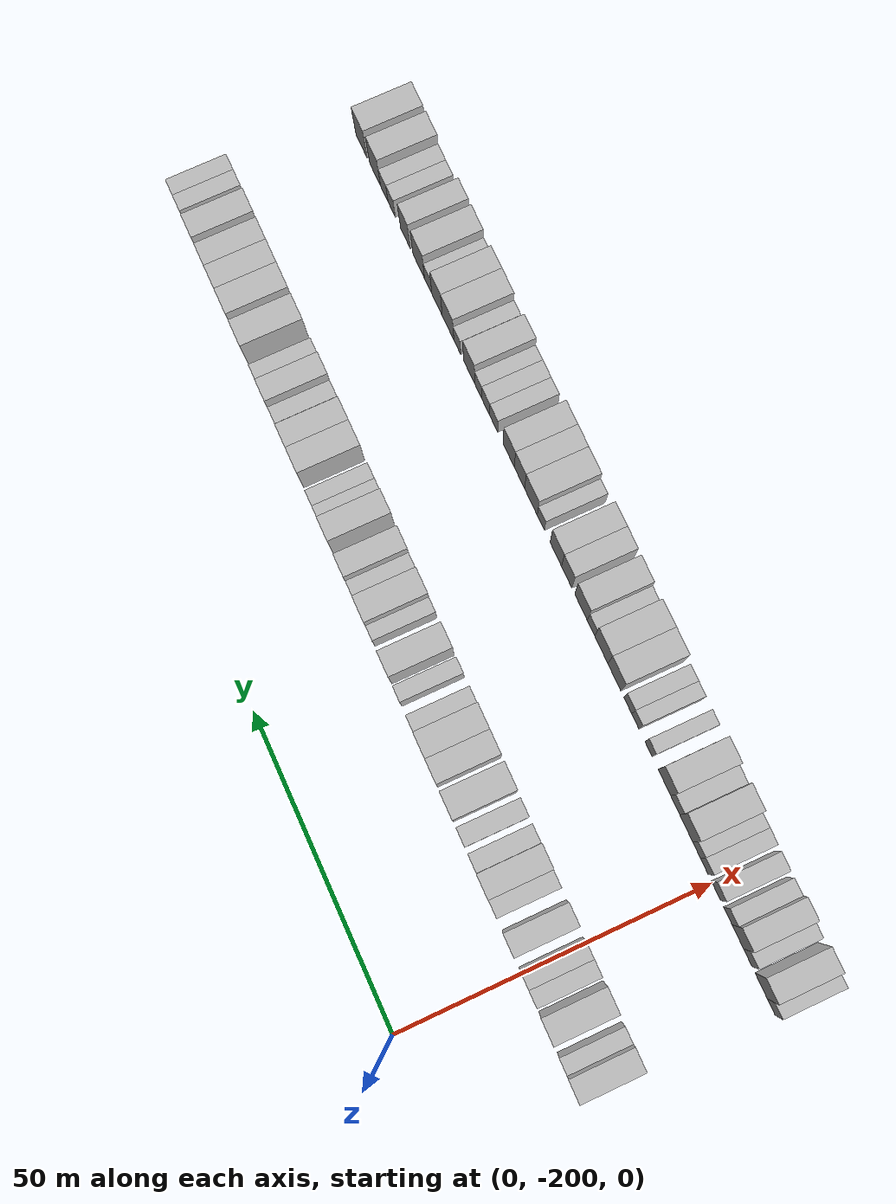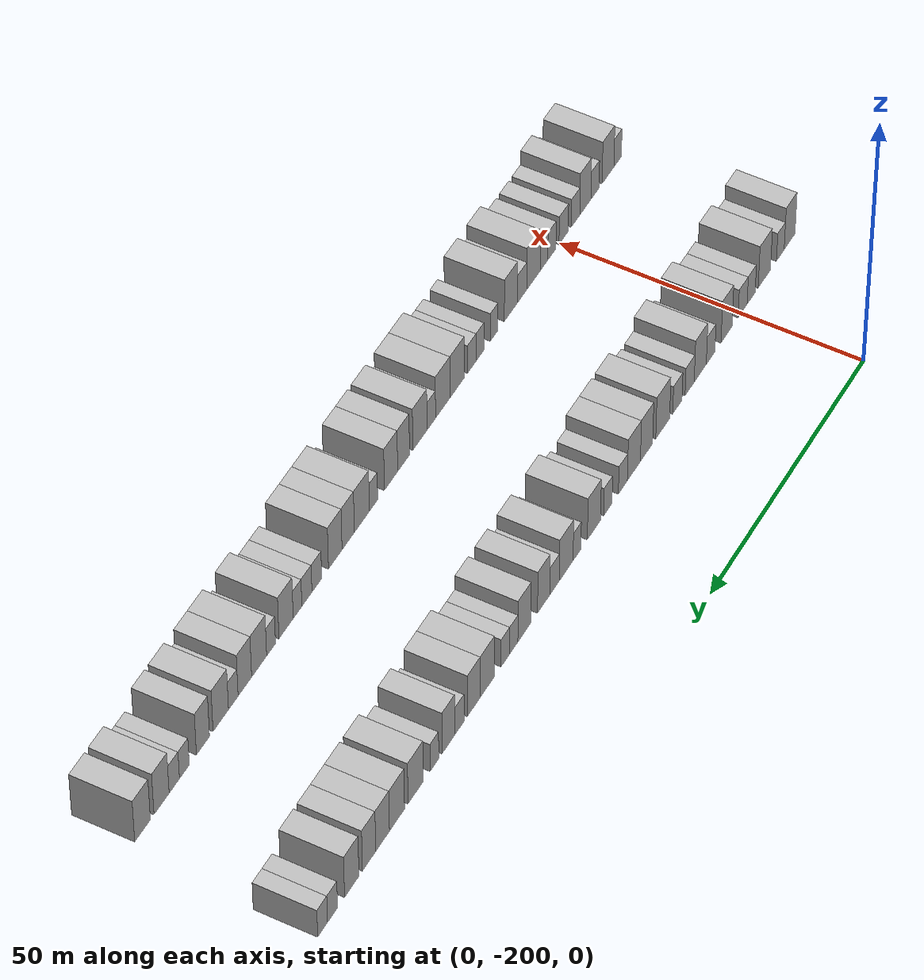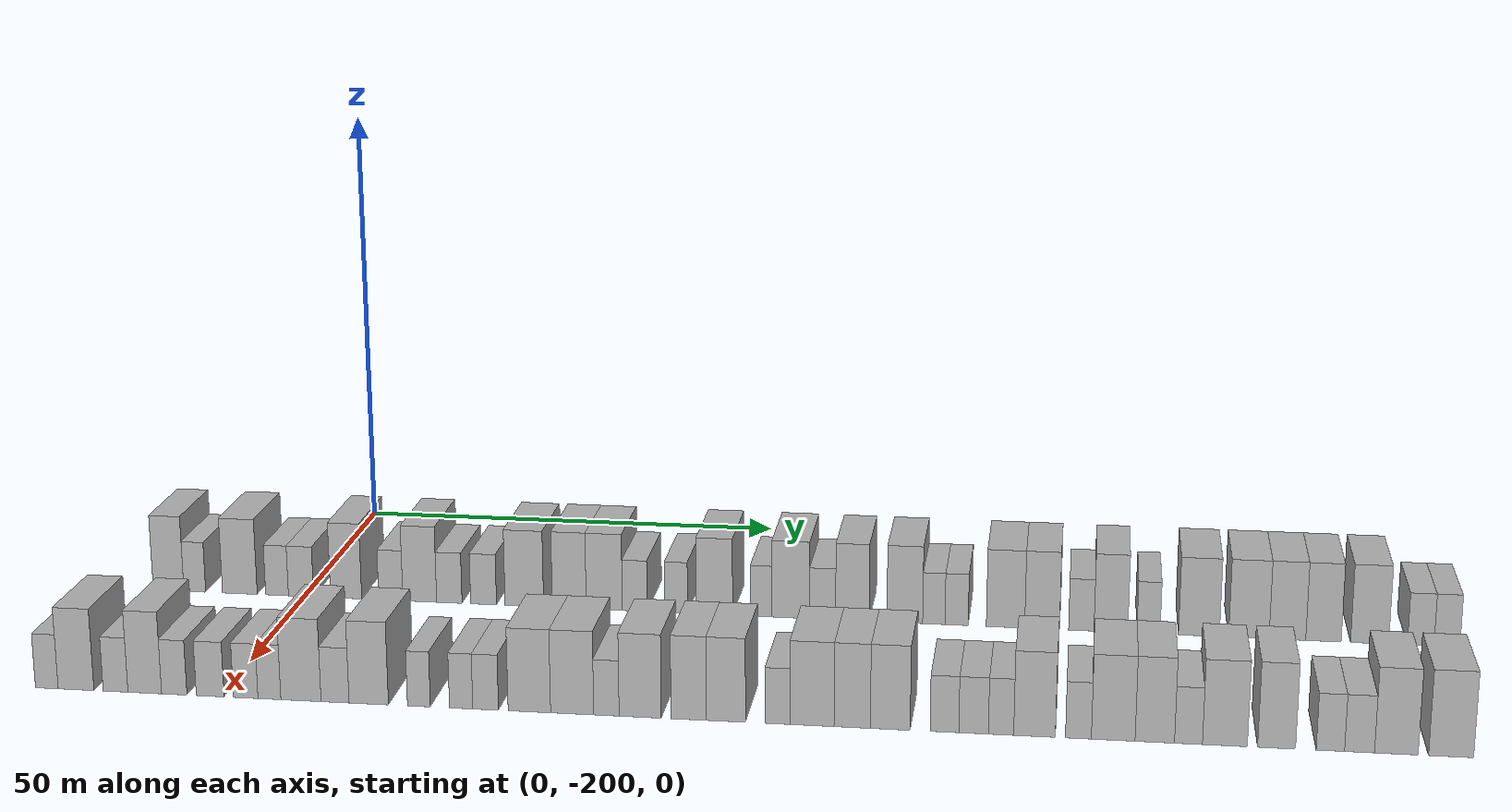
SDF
<sdf version="1.6">
 <world name="default">
  <model name="building_1">
   <static>1</static>
   <pose>25.0000 -216.1763 0 0.000000 0.000000 0.000000</pose>
   <link name="link">
    <pose>0 0 4.50 0 0 0</pose>
    <collision name="collision"><geometry><box><size>10.0000 3.6474 9.0000</size></box></geometry></collision>
    <visual name="visual">
     <cast_shadows>0</cast_shadows>
     <geometry><box><size>10.0000 3.6474 9.0000</size></box></geometry>
     <material>
      <script>
       <uri>model://HANNAS_wall/materials/scripts</uri>
       <uri>model://HANNAS_wall/materials/textures</uri>
       <name>vrc/HANNAS_wall</name>
      </script>
     </material>
    </visual>
   </link>
  </model>
  <model name="building_2">
   <static>1</static>
   <pose>25.0000 -213.0599 0 0.000000 0.000000 0.000000</pose>
   <link name="link">
    <pose>0 0 3.00 0 0 0</pose>
    <collision name="collision"><geometry><box><size>10.0000 2.5855 6.0000</size></box></geometry></collision>
    <visual name="visual">
     <cast_shadows>0</cast_shadows>
     <geometry><box><size>10.0000 2.5855 6.0000</size></box></geometry>
     <material>
      <script>
       <uri>model://HANNAS_wall/materials/scripts</uri>
       <uri>model://HANNAS_wall/materials/textures</uri>
       <name>vrc/HANNAS_wall</name>
      </script>
     </material>
    </visual>
   </link>
  </model>
  <model name="building_3">
   <static>1</static>
   <pose>25.0000 -207.7158 0 0.000000 0.000000 0.000000</pose>
   <link name="link">
    <pose>0 0 4.50 0 0 0</pose>
    <collision name="collision"><geometry><box><size>10.0000 4.1027 9.0000</size></box></geometry></collision>
    <visual name="visual">
     <cast_shadows>0</cast_shadows>
     <geometry><box><size>10.0000 4.1027 9.0000</size></box></geometry>
     <material>
      <script>
       <uri>model://HANNAS_wall/materials/scripts</uri>
       <uri>model://HANNAS_wall/materials/textures</uri>
       <name>vrc/HANNAS_wall</name>
      </script>
     </material>
    </visual>
   </link>
  </model>
  <model name="building_4">
   <static>1</static>
   <pose>25.0000 -203.3240 0 0.000000 0.000000 0.000000</pose>
   <link name="link">
    <pose>0 0 3.00 0 0 0</pose>
    <collision name="collision"><geometry><box><size>10.0000 2.6808 6.0000</size></box></geometry></collision>
    <visual name="visual">
     <cast_shadows>0</cast_shadows>
     <geometry><box><size>10.0000 2.6808 6.0000</size></box></geometry>
     <material>
      <script>
       <uri>model://HANNAS_wall/materials/scripts</uri>
       <uri>model://HANNAS_wall/materials/textures</uri>
       <name>vrc/HANNAS_wall</name>
      </script>
     </material>
    </visual>
   </link>
  </model>
  <model name="building_5">
   <static>1</static>
   <pose>25.0000 -200.5025 0 0.000000 0.000000 0.000000</pose>
   <link name="link">
    <pose>0 0 3.00 0 0 0</pose>
    <collision name="collision"><geometry><box><size>10.0000 2.9622 6.0000</size></box></geometry></collision>
    <visual name="visual">
     <cast_shadows>0</cast_shadows>
     <geometry><box><size>10.0000 2.9622 6.0000</size></box></geometry>
     <material>
      <script>
       <uri>model://HANNAS_wall/materials/scripts</uri>
       <uri>model://HANNAS_wall/materials/textures</uri>
       <name>vrc/HANNAS_wall</name>
      </script>
     </material>
    </visual>
   </link>
  </model>
  <model name="building_6">
   <static>1</static>
   <pose>25.0000 -195.2018 0 0.000000 0.000000 0.000000</pose>
   <link name="link">
    <pose>0 0 4.50 0 0 0</pose>
    <collision name="collision"><geometry><box><size>10.0000 3.6391 9.0000</size></box></geometry></collision>
    <visual name="visual">
     <cast_shadows>0</cast_shadows>
     <geometry><box><size>10.0000 3.6391 9.0000</size></box></geometry>
     <material>
      <script>
       <uri>model://HANNAS_wall/materials/scripts</uri>
       <uri>model://HANNAS_wall/materials/textures</uri>
       <name>vrc/HANNAS_wall</name>
      </script>
     </material>
    </visual>
   </link>
  </model>
  <model name="building_7">
   <static>1</static>
   <pose>25.0000 -189.9766 0 0.000000 0.000000 0.000000</pose>
   <link name="link">
    <pose>0 0 3.00 0 0 0</pose>
    <collision name="collision"><geometry><box><size>10.0000 2.8114 6.0000</size></box></geometry></collision>
    <visual name="visual">
     <cast_shadows>0</cast_shadows>
     <geometry><box><size>10.0000 2.8114 6.0000</size></box></geometry>
     <material>
      <script>
       <uri>model://HANNAS_wall/materials/scripts</uri>
       <uri>model://HANNAS_wall/materials/textures</uri>
       <name>vrc/HANNAS_wall</name>
      </script>
     </material>
    </visual>
   </link>
  </model>
  <model name="building_8">
   <static>1</static>
   <pose>25.0000 -186.6073 0 0.000000 0.000000 0.000000</pose>
   <link name="link">
    <pose>0 0 4.50 0 0 0</pose>
    <collision name="collision"><geometry><box><size>10.0000 3.9271 9.0000</size></box></geometry></collision>
    <visual name="visual">
     <cast_shadows>0</cast_shadows>
     <geometry><box><size>10.0000 3.9271 9.0000</size></box></geometry>
     <material>
      <script>
       <uri>model://HANNAS_wall/materials/scripts</uri>
       <uri>model://HANNAS_wall/materials/textures</uri>
       <name>vrc/HANNAS_wall</name>
      </script>
     </material>
    </visual>
   </link>
  </model>
  <model name="building_9">
   <static>1</static>
   <pose>25.0000 -183.1718 0 0.000000 0.000000 0.000000</pose>
   <link name="link">
    <pose>0 0 3.00 0 0 0</pose>
    <collision name="collision"><geometry><box><size>10.0000 2.9438 6.0000</size></box></geometry></collision>
    <visual name="visual">
     <cast_shadows>0</cast_shadows>
     <geometry><box><size>10.0000 2.9438 6.0000</size></box></geometry>
     <material>
      <script>
       <uri>model://HANNAS_wall/materials/scripts</uri>
       <uri>model://HANNAS_wall/materials/textures</uri>
       <name>vrc/HANNAS_wall</name>
      </script>
     </material>
    </visual>
   </link>
  </model>
  <model name="building_10">
   <static>1</static>
   <pose>25.0000 -179.2069 0 0.000000 0.000000 0.000000</pose>
   <link name="link">
    <pose>0 0 3.00 0 0 0</pose>
    <collision name="collision"><geometry><box><size>10.0000 2.9862 6.0000</size></box></geometry></collision>
    <visual name="visual">
     <cast_shadows>0</cast_shadows>
     <geometry><box><size>10.0000 2.9862 6.0000</size></box></geometry>
     <material>
      <script>
       <uri>model://HANNAS_wall/materials/scripts</uri>
       <uri>model://HANNAS_wall/materials/textures</uri>
       <name>vrc/HANNAS_wall</name>
      </script>
     </material>
    </visual>
   </link>
  </model>
  <model name="building_11">
   <static>1</static>
   <pose>25.0000 -174.4941 0 0.000000 0.000000 0.000000</pose>
   <link name="link">
    <pose>0 0 4.50 0 0 0</pose>
    <collision name="collision"><geometry><box><size>10.0000 4.4394 9.0000</size></box></geometry></collision>
    <visual name="visual">
     <cast_shadows>0</cast_shadows>
     <geometry><box><size>10.0000 4.4394 9.0000</size></box></geometry>
     <material>
      <script>
       <uri>model://HANNAS_wall/materials/scripts</uri>
       <uri>model://HANNAS_wall/materials/textures</uri>
       <name>vrc/HANNAS_wall</name>
      </script>
     </material>
    </visual>
   </link>
  </model>
  <model name="building_12">
   <static>1</static>
   <pose>25.0000 -169.3286 0 0.000000 0.000000 0.000000</pose>
   <link name="link">
    <pose>0 0 4.50 0 0 0</pose>
    <collision name="collision"><geometry><box><size>10.0000 3.8914 9.0000</size></box></geometry></collision>
    <visual name="visual">
     <cast_shadows>0</cast_shadows>
     <geometry><box><size>10.0000 3.8914 9.0000</size></box></geometry>
     <material>
      <script>
       <uri>model://HANNAS_wall/materials/scripts</uri>
       <uri>model://HANNAS_wall/materials/textures</uri>
       <name>vrc/HANNAS_wall</name>
      </script>
     </material>
    </visual>
   </link>
  </model>
  <model name="building_13">
   <static>1</static>
   <pose>25.0000 -165.3194 0 0.000000 0.000000 0.000000</pose>
   <link name="link">
    <pose>0 0 4.50 0 0 0</pose>
    <collision name="collision"><geometry><box><size>10.0000 4.1270 9.0000</size></box></geometry></collision>
    <visual name="visual">
     <cast_shadows>0</cast_shadows>
     <geometry><box><size>10.0000 4.1270 9.0000</size></box></geometry>
     <material>
      <script>
       <uri>model://HANNAS_wall/materials/scripts</uri>
       <uri>model://HANNAS_wall/materials/textures</uri>
       <name>vrc/HANNAS_wall</name>
      </script>
     </material>
    </visual>
   </link>
  </model>
  <model name="building_14">
   <static>1</static>
   <pose>25.0000 -161.8414 0 0.000000 0.000000 0.000000</pose>
   <link name="link">
    <pose>0 0 3.00 0 0 0</pose>
    <collision name="collision"><geometry><box><size>10.0000 2.8291 6.0000</size></box></geometry></collision>
    <visual name="visual">
     <cast_shadows>0</cast_shadows>
     <geometry><box><size>10.0000 2.8291 6.0000</size></box></geometry>
     <material>
      <script>
       <uri>model://HANNAS_wall/materials/scripts</uri>
       <uri>model://HANNAS_wall/materials/textures</uri>
       <name>vrc/HANNAS_wall</name>
      </script>
     </material>
    </visual>
   </link>
  </model>
  <model name="building_15">
   <static>1</static>
   <pose>25.0000 -157.1286 0 0.000000 0.000000 0.000000</pose>
   <link name="link">
    <pose>0 0 3.00 0 0 0</pose>
    <collision name="collision"><geometry><box><size>10.0000 2.5964 6.0000</size></box></geometry></collision>
    <visual name="visual">
     <cast_shadows>0</cast_shadows>
     <geometry><box><size>10.0000 2.5964 6.0000</size></box></geometry>
     <material>
      <script>
       <uri>model://HANNAS_wall/materials/scripts</uri>
       <uri>model://HANNAS_wall/materials/textures</uri>
       <name>vrc/HANNAS_wall</name>
      </script>
     </material>
    </visual>
   </link>
  </model>
  <model name="building_16">
   <static>1</static>
   <pose>25.0000 -152.7794 0 0.000000 0.000000 0.000000</pose>
   <link name="link">
    <pose>0 0 4.50 0 0 0</pose>
    <collision name="collision"><geometry><box><size>10.0000 4.1021 9.0000</size></box></geometry></collision>
    <visual name="visual">
     <cast_shadows>0</cast_shadows>
     <geometry><box><size>10.0000 4.1021 9.0000</size></box></geometry>
     <material>
      <script>
       <uri>model://HANNAS_wall/materials/scripts</uri>
       <uri>model://HANNAS_wall/materials/textures</uri>
       <name>vrc/HANNAS_wall</name>
      </script>
     </material>
    </visual>
   </link>
  </model>
  <model name="building_17">
   <static>1</static>
   <pose>25.0000 -147.5157 0 0.000000 0.000000 0.000000</pose>
   <link name="link">
    <pose>0 0 3.00 0 0 0</pose>
    <collision name="collision"><geometry><box><size>10.0000 2.4252 6.0000</size></box></geometry></collision>
    <visual name="visual">
     <cast_shadows>0</cast_shadows>
     <geometry><box><size>10.0000 2.4252 6.0000</size></box></geometry>
     <material>
      <script>
       <uri>model://HANNAS_wall/materials/scripts</uri>
       <uri>model://HANNAS_wall/materials/textures</uri>
       <name>vrc/HANNAS_wall</name>
      </script>
     </material>
    </visual>
   </link>
  </model>
  <model name="building_18">
   <static>1</static>
   <pose>25.0000 -144.1805 0 0.000000 0.000000 0.000000</pose>
   <link name="link">
    <pose>0 0 4.50 0 0 0</pose>
    <collision name="collision"><geometry><box><size>10.0000 4.2452 9.0000</size></box></geometry></collision>
    <visual name="visual">
     <cast_shadows>0</cast_shadows>
     <geometry><box><size>10.0000 4.2452 9.0000</size></box></geometry>
     <material>
      <script>
       <uri>model://HANNAS_wall/materials/scripts</uri>
       <uri>model://HANNAS_wall/materials/textures</uri>
       <name>vrc/HANNAS_wall</name>
      </script>
     </material>
    </visual>
   </link>
  </model>
  <model name="building_19">
   <static>1</static>
   <pose>25.0000 -140.5968 0 0.000000 0.000000 0.000000</pose>
   <link name="link">
    <pose>0 0 3.00 0 0 0</pose>
    <collision name="collision"><geometry><box><size>10.0000 2.9223 6.0000</size></box></geometry></collision>
    <visual name="visual">
     <cast_shadows>0</cast_shadows>
     <geometry><box><size>10.0000 2.9223 6.0000</size></box></geometry>
     <material>
      <script>
       <uri>model://HANNAS_wall/materials/scripts</uri>
       <uri>model://HANNAS_wall/materials/textures</uri>
       <name>vrc/HANNAS_wall</name>
      </script>
     </material>
    </visual>
   </link>
  </model>
  <model name="building_20">
   <static>1</static>
   <pose>25.0000 -137.2635 0 0.000000 0.000000 0.000000</pose>
   <link name="link">
    <pose>0 0 4.50 0 0 0</pose>
    <collision name="collision"><geometry><box><size>10.0000 3.7443 9.0000</size></box></geometry></collision>
    <visual name="visual">
     <cast_shadows>0</cast_shadows>
     <geometry><box><size>10.0000 3.7443 9.0000</size></box></geometry>
     <material>
      <script>
       <uri>model://HANNAS_wall/materials/scripts</uri>
       <uri>model://HANNAS_wall/materials/textures</uri>
       <name>vrc/HANNAS_wall</name>
      </script>
     </material>
    </visual>
   </link>
  </model>
  <model name="building_21">
   <static>1</static>
   <pose>25.0000 -131.4037 0 0.000000 0.000000 0.000000</pose>
   <link name="link">
    <pose>0 0 4.50 0 0 0</pose>
    <collision name="collision"><geometry><box><size>10.0000 3.9755 9.0000</size></box></geometry></collision>
    <visual name="visual">
     <cast_shadows>0</cast_shadows>
     <geometry><box><size>10.0000 3.9755 9.0000</size></box></geometry>
     <material>
      <script>
       <uri>model://HANNAS_wall/materials/scripts</uri>
       <uri>model://HANNAS_wall/materials/textures</uri>
       <name>vrc/HANNAS_wall</name>
      </script>
     </material>
    </visual>
   </link>
  </model>
  <model name="building_22">
   <static>1</static>
   <pose>25.0000 -128.1757 0 0.000000 0.000000 0.000000</pose>
   <link name="link">
    <pose>0 0 3.00 0 0 0</pose>
    <collision name="collision"><geometry><box><size>10.0000 2.4804 6.0000</size></box></geometry></collision>
    <visual name="visual">
     <cast_shadows>0</cast_shadows>
     <geometry><box><size>10.0000 2.4804 6.0000</size></box></geometry>
     <material>
      <script>
       <uri>model://HANNAS_wall/materials/scripts</uri>
       <uri>model://HANNAS_wall/materials/textures</uri>
       <name>vrc/HANNAS_wall</name>
      </script>
     </material>
    </visual>
   </link>
  </model>
  <model name="building_23">
   <static>1</static>
   <pose>25.0000 -125.6477 0 0.000000 0.000000 0.000000</pose>
   <link name="link">
    <pose>0 0 3.00 0 0 0</pose>
    <collision name="collision"><geometry><box><size>10.0000 2.5757 6.0000</size></box></geometry></collision>
    <visual name="visual">
     <cast_shadows>0</cast_shadows>
     <geometry><box><size>10.0000 2.5757 6.0000</size></box></geometry>
     <material>
      <script>
       <uri>model://HANNAS_wall/materials/scripts</uri>
       <uri>model://HANNAS_wall/materials/textures</uri>
       <name>vrc/HANNAS_wall</name>
      </script>
     </material>
    </visual>
   </link>
  </model>
  <model name="building_24">
   <static>1</static>
   <pose>25.0000 -120.2416 0 0.000000 0.000000 0.000000</pose>
   <link name="link">
    <pose>0 0 4.50 0 0 0</pose>
    <collision name="collision"><geometry><box><size>10.0000 4.2365 9.0000</size></box></geometry></collision>
    <visual name="visual">
     <cast_shadows>0</cast_shadows>
     <geometry><box><size>10.0000 4.2365 9.0000</size></box></geometry>
     <material>
      <script>
       <uri>model://HANNAS_wall/materials/scripts</uri>
       <uri>model://HANNAS_wall/materials/textures</uri>
       <name>vrc/HANNAS_wall</name>
      </script>
     </material>
    </visual>
   </link>
  </model>
  <model name="building_25">
   <static>1</static>
   <pose>25.0000 -116.2081 0 0.000000 0.000000 0.000000</pose>
   <link name="link">
    <pose>0 0 4.50 0 0 0</pose>
    <collision name="collision"><geometry><box><size>10.0000 3.8305 9.0000</size></box></geometry></collision>
    <visual name="visual">
     <cast_shadows>0</cast_shadows>
     <geometry><box><size>10.0000 3.8305 9.0000</size></box></geometry>
     <material>
      <script>
       <uri>model://HANNAS_wall/materials/scripts</uri>
       <uri>model://HANNAS_wall/materials/textures</uri>
       <name>vrc/HANNAS_wall</name>
      </script>
     </material>
    </visual>
   </link>
  </model>
  <model name="building_26">
   <static>1</static>
   <pose>25.0000 -111.9049 0 0.000000 0.000000 0.000000</pose>
   <link name="link">
    <pose>0 0 3.00 0 0 0</pose>
    <collision name="collision"><geometry><box><size>10.0000 2.7758 6.0000</size></box></geometry></collision>
    <visual name="visual">
     <cast_shadows>0</cast_shadows>
     <geometry><box><size>10.0000 2.7758 6.0000</size></box></geometry>
     <material>
      <script>
       <uri>model://HANNAS_wall/materials/scripts</uri>
       <uri>model://HANNAS_wall/materials/textures</uri>
       <name>vrc/HANNAS_wall</name>
      </script>
     </material>
    </visual>
   </link>
  </model>
  <model name="building_27">
   <static>1</static>
   <pose>25.0000 -108.6695 0 0.000000 0.000000 0.000000</pose>
   <link name="link">
    <pose>0 0 4.50 0 0 0</pose>
    <collision name="collision"><geometry><box><size>10.0000 3.6949 9.0000</size></box></geometry></collision>
    <visual name="visual">
     <cast_shadows>0</cast_shadows>
     <geometry><box><size>10.0000 3.6949 9.0000</size></box></geometry>
     <material>
      <script>
       <uri>model://HANNAS_wall/materials/scripts</uri>
       <uri>model://HANNAS_wall/materials/textures</uri>
       <name>vrc/HANNAS_wall</name>
      </script>
     </material>
    </visual>
   </link>
  </model>
  <model name="building_28">
   <static>1</static>
   <pose>25.0000 -104.5605 0 0.000000 0.000000 0.000000</pose>
   <link name="link">
    <pose>0 0 3.00 0 0 0</pose>
    <collision name="collision"><geometry><box><size>10.0000 2.5230 6.0000</size></box></geometry></collision>
    <visual name="visual">
     <cast_shadows>0</cast_shadows>
     <geometry><box><size>10.0000 2.5230 6.0000</size></box></geometry>
     <material>
      <script>
       <uri>model://HANNAS_wall/materials/scripts</uri>
       <uri>model://HANNAS_wall/materials/textures</uri>
       <name>vrc/HANNAS_wall</name>
      </script>
     </material>
    </visual>
   </link>
  </model>
  <model name="building_29">
   <static>1</static>
   <pose>25.0000 -99.0794 0 0.000000 0.000000 0.000000</pose>
   <link name="link">
    <pose>0 0 4.50 0 0 0</pose>
    <collision name="collision"><geometry><box><size>10.0000 4.4393 9.0000</size></box></geometry></collision>
    <visual name="visual">
     <cast_shadows>0</cast_shadows>
     <geometry><box><size>10.0000 4.4393 9.0000</size></box></geometry>
     <material>
      <script>
       <uri>model://HANNAS_wall/materials/scripts</uri>
       <uri>model://HANNAS_wall/materials/textures</uri>
       <name>vrc/HANNAS_wall</name>
      </script>
     </material>
    </visual>
   </link>
  </model>
  <model name="building_30">
   <static>1</static>
   <pose>25.0000 -93.6761 0 0.000000 0.000000 0.000000</pose>
   <link name="link">
    <pose>0 0 4.50 0 0 0</pose>
    <collision name="collision"><geometry><box><size>10.0000 4.3673 9.0000</size></box></geometry></collision>
    <visual name="visual">
     <cast_shadows>0</cast_shadows>
     <geometry><box><size>10.0000 4.3673 9.0000</size></box></geometry>
     <material>
      <script>
       <uri>model://HANNAS_wall/materials/scripts</uri>
       <uri>model://HANNAS_wall/materials/textures</uri>
       <name>vrc/HANNAS_wall</name>
      </script>
     </material>
    </visual>
   </link>
  </model>
  <model name="building_31">
   <static>1</static>
   <pose>25.0000 -89.5185 0 0.000000 0.000000 0.000000</pose>
   <link name="link">
    <pose>0 0 4.50 0 0 0</pose>
    <collision name="collision"><geometry><box><size>10.0000 3.9477 9.0000</size></box></geometry></collision>
    <visual name="visual">
     <cast_shadows>0</cast_shadows>
     <geometry><box><size>10.0000 3.9477 9.0000</size></box></geometry>
     <material>
      <script>
       <uri>model://HANNAS_wall/materials/scripts</uri>
       <uri>model://HANNAS_wall/materials/textures</uri>
       <name>vrc/HANNAS_wall</name>
      </script>
     </material>
    </visual>
   </link>
  </model>
  <model name="building_32">
   <static>1</static>
   <pose>25.0000 -85.6427 0 0.000000 0.000000 0.000000</pose>
   <link name="link">
    <pose>0 0 4.50 0 0 0</pose>
    <collision name="collision"><geometry><box><size>10.0000 3.8040 9.0000</size></box></geometry></collision>
    <visual name="visual">
     <cast_shadows>0</cast_shadows>
     <geometry><box><size>10.0000 3.8040 9.0000</size></box></geometry>
     <material>
      <script>
       <uri>model://HANNAS_wall/materials/scripts</uri>
       <uri>model://HANNAS_wall/materials/textures</uri>
       <name>vrc/HANNAS_wall</name>
      </script>
     </material>
    </visual>
   </link>
  </model>
  <model name="building_33">
   <static>1</static>
   <pose>25.0000 -80.7029 0 0.000000 0.000000 0.000000</pose>
   <link name="link">
    <pose>0 0 4.50 0 0 0</pose>
    <collision name="collision"><geometry><box><size>10.0000 4.0755 9.0000</size></box></geometry></collision>
    <visual name="visual">
     <cast_shadows>0</cast_shadows>
     <geometry><box><size>10.0000 4.0755 9.0000</size></box></geometry>
     <material>
      <script>
       <uri>model://HANNAS_wall/materials/scripts</uri>
       <uri>model://HANNAS_wall/materials/textures</uri>
       <name>vrc/HANNAS_wall</name>
      </script>
     </material>
    </visual>
   </link>
  </model>
  <model name="building_34">
   <static>1</static>
   <pose>25.0000 -75.2539 0 0.000000 0.000000 0.000000</pose>
   <link name="link">
    <pose>0 0 3.00 0 0 0</pose>
    <collision name="collision"><geometry><box><size>10.0000 2.8225 6.0000</size></box></geometry></collision>
    <visual name="visual">
     <cast_shadows>0</cast_shadows>
     <geometry><box><size>10.0000 2.8225 6.0000</size></box></geometry>
     <material>
      <script>
       <uri>model://HANNAS_wall/materials/scripts</uri>
       <uri>model://HANNAS_wall/materials/textures</uri>
       <name>vrc/HANNAS_wall</name>
      </script>
     </material>
    </visual>
   </link>
  </model>
  <model name="building_35">
   <static>1</static>
   <pose>25.0000 -72.4639 0 0.000000 0.000000 0.000000</pose>
   <link name="link">
    <pose>0 0 3.00 0 0 0</pose>
    <collision name="collision"><geometry><box><size>10.0000 2.7576 6.0000</size></box></geometry></collision>
    <visual name="visual">
     <cast_shadows>0</cast_shadows>
     <geometry><box><size>10.0000 2.7576 6.0000</size></box></geometry>
     <material>
      <script>
       <uri>model://HANNAS_wall/materials/scripts</uri>
       <uri>model://HANNAS_wall/materials/textures</uri>
       <name>vrc/HANNAS_wall</name>
      </script>
     </material>
    </visual>
   </link>
  </model>
  <model name="building_110">
   <static>1</static>
   <pose>55.0000 -218.7685 0 0.000000 0.000000 0.000000</pose>
   <link name="link">
    <pose>0 0 3.00 0 0 0</pose>
    <collision name="collision"><geometry><box><size>10.0000 2.4629 6.0000</size></box></geometry></collision>
    <visual name="visual">
     <cast_shadows>0</cast_shadows>
     <geometry><box><size>10.0000 2.4629 6.0000</size></box></geometry>
     <material>
      <script>
       <uri>model://HANNAS_wall/materials/scripts</uri>
       <uri>model://HANNAS_wall/materials/textures</uri>
       <name>vrc/HANNAS_wall</name>
      </script>
     </material>
    </visual>
   </link>
  </model>
  <model name="building_111">
   <static>1</static>
   <pose>55.0000 -215.5993 0 0.000000 0.000000 0.000000</pose>
   <link name="link">
    <pose>0 0 4.50 0 0 0</pose>
    <collision name="collision"><geometry><box><size>10.0000 3.8756 9.0000</size></box></geometry></collision>
    <visual name="visual">
     <cast_shadows>0</cast_shadows>
     <geometry><box><size>10.0000 3.8756 9.0000</size></box></geometry>
     <material>
      <script>
       <uri>model://HANNAS_wall/materials/scripts</uri>
       <uri>model://HANNAS_wall/materials/textures</uri>
       <name>vrc/HANNAS_wall</name>
      </script>
     </material>
    </visual>
   </link>
  </model>
  <model name="building_112">
   <static>1</static>
   <pose>55.0000 -211.3281 0 0.000000 0.000000 0.000000</pose>
   <link name="link">
    <pose>0 0 3.00 0 0 0</pose>
    <collision name="collision"><geometry><box><size>10.0000 2.6669 6.0000</size></box></geometry></collision>
    <visual name="visual">
     <cast_shadows>0</cast_shadows>
     <geometry><box><size>10.0000 2.6669 6.0000</size></box></geometry>
     <material>
      <script>
       <uri>model://HANNAS_wall/materials/scripts</uri>
       <uri>model://HANNAS_wall/materials/textures</uri>
       <name>vrc/HANNAS_wall</name>
      </script>
     </material>
    </visual>
   </link>
  </model>
  <model name="building_113">
   <static>1</static>
   <pose>55.0000 -208.1847 0 0.000000 0.000000 0.000000</pose>
   <link name="link">
    <pose>0 0 4.50 0 0 0</pose>
    <collision name="collision"><geometry><box><size>10.0000 3.6197 9.0000</size></box></geometry></collision>
    <visual name="visual">
     <cast_shadows>0</cast_shadows>
     <geometry><box><size>10.0000 3.6197 9.0000</size></box></geometry>
     <material>
      <script>
       <uri>model://HANNAS_wall/materials/scripts</uri>
       <uri>model://HANNAS_wall/materials/textures</uri>
       <name>vrc/HANNAS_wall</name>
      </script>
     </material>
    </visual>
   </link>
  </model>
  <model name="building_114">
   <static>1</static>
   <pose>55.0000 -205.0154 0 0.000000 0.000000 0.000000</pose>
   <link name="link">
    <pose>0 0 3.00 0 0 0</pose>
    <collision name="collision"><geometry><box><size>10.0000 2.7189 6.0000</size></box></geometry></collision>
    <visual name="visual">
     <cast_shadows>0</cast_shadows>
     <geometry><box><size>10.0000 2.7189 6.0000</size></box></geometry>
     <material>
      <script>
       <uri>model://HANNAS_wall/materials/scripts</uri>
       <uri>model://HANNAS_wall/materials/textures</uri>
       <name>vrc/HANNAS_wall</name>
      </script>
     </material>
    </visual>
   </link>
  </model>
  <model name="building_115">
   <static>1</static>
   <pose>55.0000 -201.1652 0 0.000000 0.000000 0.000000</pose>
   <link name="link">
    <pose>0 0 3.00 0 0 0</pose>
    <collision name="collision"><geometry><box><size>10.0000 2.9817 6.0000</size></box></geometry></collision>
    <visual name="visual">
     <cast_shadows>0</cast_shadows>
     <geometry><box><size>10.0000 2.9817 6.0000</size></box></geometry>
     <material>
      <script>
       <uri>model://HANNAS_wall/materials/scripts</uri>
       <uri>model://HANNAS_wall/materials/textures</uri>
       <name>vrc/HANNAS_wall</name>
      </script>
     </material>
    </visual>
   </link>
  </model>
  <model name="building_116">
   <static>1</static>
   <pose>55.0000 -197.3724 0 0.000000 0.000000 0.000000</pose>
   <link name="link">
    <pose>0 0 3.00 0 0 0</pose>
    <collision name="collision"><geometry><box><size>10.0000 2.6039 6.0000</size></box></geometry></collision>
    <visual name="visual">
     <cast_shadows>0</cast_shadows>
     <geometry><box><size>10.0000 2.6039 6.0000</size></box></geometry>
     <material>
      <script>
       <uri>model://HANNAS_wall/materials/scripts</uri>
       <uri>model://HANNAS_wall/materials/textures</uri>
       <name>vrc/HANNAS_wall</name>
      </script>
     </material>
    </visual>
   </link>
  </model>
  <model name="building_117">
   <static>1</static>
   <pose>55.0000 -194.8547 0 0.000000 0.000000 0.000000</pose>
   <link name="link">
    <pose>0 0 3.00 0 0 0</pose>
    <collision name="collision"><geometry><box><size>10.0000 2.4315 6.0000</size></box></geometry></collision>
    <visual name="visual">
     <cast_shadows>0</cast_shadows>
     <geometry><box><size>10.0000 2.4315 6.0000</size></box></geometry>
     <material>
      <script>
       <uri>model://HANNAS_wall/materials/scripts</uri>
       <uri>model://HANNAS_wall/materials/textures</uri>
       <name>vrc/HANNAS_wall</name>
      </script>
     </material>
    </visual>
   </link>
  </model>
  <model name="building_118">
   <static>1</static>
   <pose>55.0000 -191.5073 0 0.000000 0.000000 0.000000</pose>
   <link name="link">
    <pose>0 0 4.50 0 0 0</pose>
    <collision name="collision"><geometry><box><size>10.0000 4.2632 9.0000</size></box></geometry></collision>
    <visual name="visual">
     <cast_shadows>0</cast_shadows>
     <geometry><box><size>10.0000 4.2632 9.0000</size></box></geometry>
     <material>
      <script>
       <uri>model://HANNAS_wall/materials/scripts</uri>
       <uri>model://HANNAS_wall/materials/textures</uri>
       <name>vrc/HANNAS_wall</name>
      </script>
     </material>
    </visual>
   </link>
  </model>
  <model name="building_119">
   <static>1</static>
   <pose>55.0000 -187.8926 0 0.000000 0.000000 0.000000</pose>
   <link name="link">
    <pose>0 0 3.00 0 0 0</pose>
    <collision name="collision"><geometry><box><size>10.0000 2.9661 6.0000</size></box></geometry></collision>
    <visual name="visual">
     <cast_shadows>0</cast_shadows>
     <geometry><box><size>10.0000 2.9661 6.0000</size></box></geometry>
     <material>
      <script>
       <uri>model://HANNAS_wall/materials/scripts</uri>
       <uri>model://HANNAS_wall/materials/textures</uri>
       <name>vrc/HANNAS_wall</name>
      </script>
     </material>
    </visual>
   </link>
  </model>
  <model name="building_120">
   <static>1</static>
   <pose>55.0000 -184.3356 0 0.000000 0.000000 0.000000</pose>
   <link name="link">
    <pose>0 0 4.50 0 0 0</pose>
    <collision name="collision"><geometry><box><size>10.0000 4.1479 9.0000</size></box></geometry></collision>
    <visual name="visual">
     <cast_shadows>0</cast_shadows>
     <geometry><box><size>10.0000 4.1479 9.0000</size></box></geometry>
     <material>
      <script>
       <uri>model://HANNAS_wall/materials/scripts</uri>
       <uri>model://HANNAS_wall/materials/textures</uri>
       <name>vrc/HANNAS_wall</name>
      </script>
     </material>
    </visual>
   </link>
  </model>
  <model name="building_121">
   <static>1</static>
   <pose>55.0000 -179.0603 0 0.000000 0.000000 0.000000</pose>
   <link name="link">
    <pose>0 0 3.00 0 0 0</pose>
    <collision name="collision"><geometry><box><size>10.0000 2.4028 6.0000</size></box></geometry></collision>
    <visual name="visual">
     <cast_shadows>0</cast_shadows>
     <geometry><box><size>10.0000 2.4028 6.0000</size></box></geometry>
     <material>
      <script>
       <uri>model://HANNAS_wall/materials/scripts</uri>
       <uri>model://HANNAS_wall/materials/textures</uri>
       <name>vrc/HANNAS_wall</name>
      </script>
     </material>
    </visual>
   </link>
  </model>
  <model name="building_122">
   <static>1</static>
   <pose>55.0000 -174.6417 0 0.000000 0.000000 0.000000</pose>
   <link name="link">
    <pose>0 0 3.00 0 0 0</pose>
    <collision name="collision"><geometry><box><size>10.0000 2.4344 6.0000</size></box></geometry></collision>
    <visual name="visual">
     <cast_shadows>0</cast_shadows>
     <geometry><box><size>10.0000 2.4344 6.0000</size></box></geometry>
     <material>
      <script>
       <uri>model://HANNAS_wall/materials/scripts</uri>
       <uri>model://HANNAS_wall/materials/textures</uri>
       <name>vrc/HANNAS_wall</name>
      </script>
     </material>
    </visual>
   </link>
  </model>
  <model name="building_123">
   <static>1</static>
   <pose>55.0000 -172.0846 0 0.000000 0.000000 0.000000</pose>
   <link name="link">
    <pose>0 0 3.00 0 0 0</pose>
    <collision name="collision"><geometry><box><size>10.0000 2.6797 6.0000</size></box></geometry></collision>
    <visual name="visual">
     <cast_shadows>0</cast_shadows>
     <geometry><box><size>10.0000 2.6797 6.0000</size></box></geometry>
     <material>
      <script>
       <uri>model://HANNAS_wall/materials/scripts</uri>
       <uri>model://HANNAS_wall/materials/textures</uri>
       <name>vrc/HANNAS_wall</name>
      </script>
     </material>
    </visual>
   </link>
  </model>
  <model name="building_124">
   <static>1</static>
   <pose>55.0000 -167.5384 0 0.000000 0.000000 0.000000</pose>
   <link name="link">
    <pose>0 0 4.50 0 0 0</pose>
    <collision name="collision"><geometry><box><size>10.0000 4.4126 9.0000</size></box></geometry></collision>
    <visual name="visual">
     <cast_shadows>0</cast_shadows>
     <geometry><box><size>10.0000 4.4126 9.0000</size></box></geometry>
     <material>
      <script>
       <uri>model://HANNAS_wall/materials/scripts</uri>
       <uri>model://HANNAS_wall/materials/textures</uri>
       <name>vrc/HANNAS_wall</name>
      </script>
     </material>
    </visual>
   </link>
  </model>
  <model name="building_125">
   <static>1</static>
   <pose>55.0000 -163.1033 0 0.000000 0.000000 0.000000</pose>
   <link name="link">
    <pose>0 0 4.50 0 0 0</pose>
    <collision name="collision"><geometry><box><size>10.0000 4.4576 9.0000</size></box></geometry></collision>
    <visual name="visual">
     <cast_shadows>0</cast_shadows>
     <geometry><box><size>10.0000 4.4576 9.0000</size></box></geometry>
     <material>
      <script>
       <uri>model://HANNAS_wall/materials/scripts</uri>
       <uri>model://HANNAS_wall/materials/textures</uri>
       <name>vrc/HANNAS_wall</name>
      </script>
     </material>
    </visual>
   </link>
  </model>
  <model name="building_126">
   <static>1</static>
   <pose>55.0000 -159.5669 0 0.000000 0.000000 0.000000</pose>
   <link name="link">
    <pose>0 0 3.00 0 0 0</pose>
    <collision name="collision"><geometry><box><size>10.0000 2.6152 6.0000</size></box></geometry></collision>
    <visual name="visual">
     <cast_shadows>0</cast_shadows>
     <geometry><box><size>10.0000 2.6152 6.0000</size></box></geometry>
     <material>
      <script>
       <uri>model://HANNAS_wall/materials/scripts</uri>
       <uri>model://HANNAS_wall/materials/textures</uri>
       <name>vrc/HANNAS_wall</name>
      </script>
     </material>
    </visual>
   </link>
  </model>
  <model name="building_127">
   <static>1</static>
   <pose>55.0000 -156.0914 0 0.000000 0.000000 0.000000</pose>
   <link name="link">
    <pose>0 0 4.50 0 0 0</pose>
    <collision name="collision"><geometry><box><size>10.0000 4.3360 9.0000</size></box></geometry></collision>
    <visual name="visual">
     <cast_shadows>0</cast_shadows>
     <geometry><box><size>10.0000 4.3360 9.0000</size></box></geometry>
     <material>
      <script>
       <uri>model://HANNAS_wall/materials/scripts</uri>
       <uri>model://HANNAS_wall/materials/textures</uri>
       <name>vrc/HANNAS_wall</name>
      </script>
     </material>
    </visual>
   </link>
  </model>
  <model name="building_128">
   <static>1</static>
   <pose>55.0000 -151.1227 0 0.000000 0.000000 0.000000</pose>
   <link name="link">
    <pose>0 0 4.50 0 0 0</pose>
    <collision name="collision"><geometry><box><size>10.0000 3.6012 9.0000</size></box></geometry></collision>
    <visual name="visual">
     <cast_shadows>0</cast_shadows>
     <geometry><box><size>10.0000 3.6012 9.0000</size></box></geometry>
     <material>
      <script>
       <uri>model://HANNAS_wall/materials/scripts</uri>
       <uri>model://HANNAS_wall/materials/textures</uri>
       <name>vrc/HANNAS_wall</name>
      </script>
     </material>
    </visual>
   </link>
  </model>
  <model name="building_129">
   <static>1</static>
   <pose>55.0000 -147.3217 0 0.000000 0.000000 0.000000</pose>
   <link name="link">
    <pose>0 0 4.50 0 0 0</pose>
    <collision name="collision"><geometry><box><size>10.0000 4.0009 9.0000</size></box></geometry></collision>
    <visual name="visual">
     <cast_shadows>0</cast_shadows>
     <geometry><box><size>10.0000 4.0009 9.0000</size></box></geometry>
     <material>
      <script>
       <uri>model://HANNAS_wall/materials/scripts</uri>
       <uri>model://HANNAS_wall/materials/textures</uri>
       <name>vrc/HANNAS_wall</name>
      </script>
     </material>
    </visual>
   </link>
  </model>
  <model name="building_130">
   <static>1</static>
   <pose>55.0000 -142.0681 0 0.000000 0.000000 0.000000</pose>
   <link name="link">
    <pose>0 0 3.00 0 0 0</pose>
    <collision name="collision"><geometry><box><size>10.0000 2.5062 6.0000</size></box></geometry></collision>
    <visual name="visual">
     <cast_shadows>0</cast_shadows>
     <geometry><box><size>10.0000 2.5062 6.0000</size></box></geometry>
     <material>
      <script>
       <uri>model://HANNAS_wall/materials/scripts</uri>
       <uri>model://HANNAS_wall/materials/textures</uri>
       <name>vrc/HANNAS_wall</name>
      </script>
     </material>
    </visual>
   </link>
  </model>
  <model name="building_131">
   <static>1</static>
   <pose>55.0000 -138.5778 0 0.000000 0.000000 0.000000</pose>
   <link name="link">
    <pose>0 0 4.50 0 0 0</pose>
    <collision name="collision"><geometry><box><size>10.0000 4.4744 9.0000</size></box></geometry></collision>
    <visual name="visual">
     <cast_shadows>0</cast_shadows>
     <geometry><box><size>10.0000 4.4744 9.0000</size></box></geometry>
     <material>
      <script>
       <uri>model://HANNAS_wall/materials/scripts</uri>
       <uri>model://HANNAS_wall/materials/textures</uri>
       <name>vrc/HANNAS_wall</name>
      </script>
     </material>
    </visual>
   </link>
  </model>
  <model name="building_132">
   <static>1</static>
   <pose>55.0000 -134.5091 0 0.000000 0.000000 0.000000</pose>
   <link name="link">
    <pose>0 0 4.50 0 0 0</pose>
    <collision name="collision"><geometry><box><size>10.0000 3.6631 9.0000</size></box></geometry></collision>
    <visual name="visual">
     <cast_shadows>0</cast_shadows>
     <geometry><box><size>10.0000 3.6631 9.0000</size></box></geometry>
     <material>
      <script>
       <uri>model://HANNAS_wall/materials/scripts</uri>
       <uri>model://HANNAS_wall/materials/textures</uri>
       <name>vrc/HANNAS_wall</name>
      </script>
     </material>
    </visual>
   </link>
  </model>
  <model name="building_133">
   <static>1</static>
   <pose>55.0000 -130.6771 0 0.000000 0.000000 0.000000</pose>
   <link name="link">
    <pose>0 0 4.50 0 0 0</pose>
    <collision name="collision"><geometry><box><size>10.0000 4.0009 9.0000</size></box></geometry></collision>
    <visual name="visual">
     <cast_shadows>0</cast_shadows>
     <geometry><box><size>10.0000 4.0009 9.0000</size></box></geometry>
     <material>
      <script>
       <uri>model://HANNAS_wall/materials/scripts</uri>
       <uri>model://HANNAS_wall/materials/textures</uri>
       <name>vrc/HANNAS_wall</name>
      </script>
     </material>
    </visual>
   </link>
  </model>
  <model name="building_134">
   <static>1</static>
   <pose>55.0000 -125.2434 0 0.000000 0.000000 0.000000</pose>
   <link name="link">
    <pose>0 0 3.00 0 0 0</pose>
    <collision name="collision"><geometry><box><size>10.0000 2.8663 6.0000</size></box></geometry></collision>
    <visual name="visual">
     <cast_shadows>0</cast_shadows>
     <geometry><box><size>10.0000 2.8663 6.0000</size></box></geometry>
     <material>
      <script>
       <uri>model://HANNAS_wall/materials/scripts</uri>
       <uri>model://HANNAS_wall/materials/textures</uri>
       <name>vrc/HANNAS_wall</name>
      </script>
     </material>
    </visual>
   </link>
  </model>
  <model name="building_135">
   <static>1</static>
   <pose>55.0000 -122.3354 0 0.000000 0.000000 0.000000</pose>
   <link name="link">
    <pose>0 0 3.00 0 0 0</pose>
    <collision name="collision"><geometry><box><size>10.0000 2.9499 6.0000</size></box></geometry></collision>
    <visual name="visual">
     <cast_shadows>0</cast_shadows>
     <geometry><box><size>10.0000 2.9499 6.0000</size></box></geometry>
     <material>
      <script>
       <uri>model://HANNAS_wall/materials/scripts</uri>
       <uri>model://HANNAS_wall/materials/textures</uri>
       <name>vrc/HANNAS_wall</name>
      </script>
     </material>
    </visual>
   </link>
  </model>
  <model name="building_136">
   <static>1</static>
   <pose>55.0000 -119.6001 0 0.000000 0.000000 0.000000</pose>
   <link name="link">
    <pose>0 0 3.00 0 0 0</pose>
    <collision name="collision"><geometry><box><size>10.0000 2.5207 6.0000</size></box></geometry></collision>
    <visual name="visual">
     <cast_shadows>0</cast_shadows>
     <geometry><box><size>10.0000 2.5207 6.0000</size></box></geometry>
     <material>
      <script>
       <uri>model://HANNAS_wall/materials/scripts</uri>
       <uri>model://HANNAS_wall/materials/textures</uri>
       <name>vrc/HANNAS_wall</name>
      </script>
     </material>
    </visual>
   </link>
  </model>
  <model name="building_137">
   <static>1</static>
   <pose>55.0000 -116.2729 0 0.000000 0.000000 0.000000</pose>
   <link name="link">
    <pose>0 0 4.50 0 0 0</pose>
    <collision name="collision"><geometry><box><size>10.0000 4.1337 9.0000</size></box></geometry></collision>
    <visual name="visual">
     <cast_shadows>0</cast_shadows>
     <geometry><box><size>10.0000 4.1337 9.0000</size></box></geometry>
     <material>
      <script>
       <uri>model://HANNAS_wall/materials/scripts</uri>
       <uri>model://HANNAS_wall/materials/textures</uri>
       <name>vrc/HANNAS_wall</name>
      </script>
     </material>
    </visual>
   </link>
  </model>
  <model name="building_138">
   <static>1</static>
   <pose>55.0000 -111.9265 0 0.000000 0.000000 0.000000</pose>
   <link name="link">
    <pose>0 0 3.00 0 0 0</pose>
    <collision name="collision"><geometry><box><size>10.0000 2.5590 6.0000</size></box></geometry></collision>
    <visual name="visual">
     <cast_shadows>0</cast_shadows>
     <geometry><box><size>10.0000 2.5590 6.0000</size></box></geometry>
     <material>
      <script>
       <uri>model://HANNAS_wall/materials/scripts</uri>
       <uri>model://HANNAS_wall/materials/textures</uri>
       <name>vrc/HANNAS_wall</name>
      </script>
     </material>
    </visual>
   </link>
  </model>
  <model name="building_139">
   <static>1</static>
   <pose>55.0000 -108.4934 0 0.000000 0.000000 0.000000</pose>
   <link name="link">
    <pose>0 0 4.50 0 0 0</pose>
    <collision name="collision"><geometry><box><size>10.0000 4.3073 9.0000</size></box></geometry></collision>
    <visual name="visual">
     <cast_shadows>0</cast_shadows>
     <geometry><box><size>10.0000 4.3073 9.0000</size></box></geometry>
     <material>
      <script>
       <uri>model://HANNAS_wall/materials/scripts</uri>
       <uri>model://HANNAS_wall/materials/textures</uri>
       <name>vrc/HANNAS_wall</name>
      </script>
     </material>
    </visual>
   </link>
  </model>
  <model name="building_140">
   <static>1</static>
   <pose>55.0000 -104.4031 0 0.000000 0.000000 0.000000</pose>
   <link name="link">
    <pose>0 0 4.50 0 0 0</pose>
    <collision name="collision"><geometry><box><size>10.0000 3.8732 9.0000</size></box></geometry></collision>
    <visual name="visual">
     <cast_shadows>0</cast_shadows>
     <geometry><box><size>10.0000 3.8732 9.0000</size></box></geometry>
     <material>
      <script>
       <uri>model://HANNAS_wall/materials/scripts</uri>
       <uri>model://HANNAS_wall/materials/textures</uri>
       <name>vrc/HANNAS_wall</name>
      </script>
     </material>
    </visual>
   </link>
  </model>
  <model name="building_141">
   <static>1</static>
   <pose>55.0000 -101.1013 0 0.000000 0.000000 0.000000</pose>
   <link name="link">
    <pose>0 0 3.00 0 0 0</pose>
    <collision name="collision"><geometry><box><size>10.0000 2.7304 6.0000</size></box></geometry></collision>
    <visual name="visual">
     <cast_shadows>0</cast_shadows>
     <geometry><box><size>10.0000 2.7304 6.0000</size></box></geometry>
     <material>
      <script>
       <uri>model://HANNAS_wall/materials/scripts</uri>
       <uri>model://HANNAS_wall/materials/textures</uri>
       <name>vrc/HANNAS_wall</name>
      </script>
     </material>
    </visual>
   </link>
  </model>
  <model name="building_142">
   <static>1</static>
   <pose>55.0000 -97.5467 0 0.000000 0.000000 0.000000</pose>
   <link name="link">
    <pose>0 0 4.50 0 0 0</pose>
    <collision name="collision"><geometry><box><size>10.0000 4.3789 9.0000</size></box></geometry></collision>
    <visual name="visual">
     <cast_shadows>0</cast_shadows>
     <geometry><box><size>10.0000 4.3789 9.0000</size></box></geometry>
     <material>
      <script>
       <uri>model://HANNAS_wall/materials/scripts</uri>
       <uri>model://HANNAS_wall/materials/textures</uri>
       <name>vrc/HANNAS_wall</name>
      </script>
     </material>
    </visual>
   </link>
  </model>
  <model name="building_143">
   <static>1</static>
   <pose>55.0000 -92.5148 0 0.000000 0.000000 0.000000</pose>
   <link name="link">
    <pose>0 0 4.50 0 0 0</pose>
    <collision name="collision"><geometry><box><size>10.0000 3.6848 9.0000</size></box></geometry></collision>
    <visual name="visual">
     <cast_shadows>0</cast_shadows>
     <geometry><box><size>10.0000 3.6848 9.0000</size></box></geometry>
     <material>
      <script>
       <uri>model://HANNAS_wall/materials/scripts</uri>
       <uri>model://HANNAS_wall/materials/textures</uri>
       <name>vrc/HANNAS_wall</name>
      </script>
     </material>
    </visual>
   </link>
  </model>
  <model name="building_144">
   <static>1</static>
   <pose>55.0000 -87.3005 0 0.000000 0.000000 0.000000</pose>
   <link name="link">
    <pose>0 0 3.00 0 0 0</pose>
    <collision name="collision"><geometry><box><size>10.0000 2.7437 6.0000</size></box></geometry></collision>
    <visual name="visual">
     <cast_shadows>0</cast_shadows>
     <geometry><box><size>10.0000 2.7437 6.0000</size></box></geometry>
     <material>
      <script>
       <uri>model://HANNAS_wall/materials/scripts</uri>
       <uri>model://HANNAS_wall/materials/textures</uri>
       <name>vrc/HANNAS_wall</name>
      </script>
     </material>
    </visual>
   </link>
  </model>
  <model name="building_145">
   <static>1</static>
   <pose>55.0000 -84.4865 0 0.000000 0.000000 0.000000</pose>
   <link name="link">
    <pose>0 0 3.00 0 0 0</pose>
    <collision name="collision"><geometry><box><size>10.0000 2.8843 6.0000</size></box></geometry></collision>
    <visual name="visual">
     <cast_shadows>0</cast_shadows>
     <geometry><box><size>10.0000 2.8843 6.0000</size></box></geometry>
     <material>
      <script>
       <uri>model://HANNAS_wall/materials/scripts</uri>
       <uri>model://HANNAS_wall/materials/textures</uri>
       <name>vrc/HANNAS_wall</name>
      </script>
     </material>
    </visual>
   </link>
  </model>
  <model name="building_146">
   <static>1</static>
   <pose>55.0000 -80.9475 0 0.000000 0.000000 0.000000</pose>
   <link name="link">
    <pose>0 0 4.50 0 0 0</pose>
    <collision name="collision"><geometry><box><size>10.0000 4.1936 9.0000</size></box></geometry></collision>
    <visual name="visual">
     <cast_shadows>0</cast_shadows>
     <geometry><box><size>10.0000 4.1936 9.0000</size></box></geometry>
     <material>
      <script>
       <uri>model://HANNAS_wall/materials/scripts</uri>
       <uri>model://HANNAS_wall/materials/textures</uri>
       <name>vrc/HANNAS_wall</name>
      </script>
     </material>
    </visual>
   </link>
  </model>
  <model name="building_147">
   <static>1</static>
   <pose>55.0000 -75.6933 0 0.000000 0.000000 0.000000</pose>
   <link name="link">
    <pose>0 0 4.50 0 0 0</pose>
    <collision name="collision"><geometry><box><size>10.0000 4.3148 9.0000</size></box></geometry></collision>
    <visual name="visual">
     <cast_shadows>0</cast_shadows>
     <geometry><box><size>10.0000 4.3148 9.0000</size></box></geometry>
     <material>
      <script>
       <uri>model://HANNAS_wall/materials/scripts</uri>
       <uri>model://HANNAS_wall/materials/textures</uri>
       <name>vrc/HANNAS_wall</name>
      </script>
     </material>
    </visual>
   </link>
  </model>
 </world>
</sdf>
